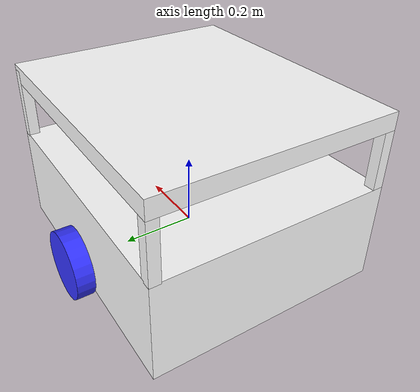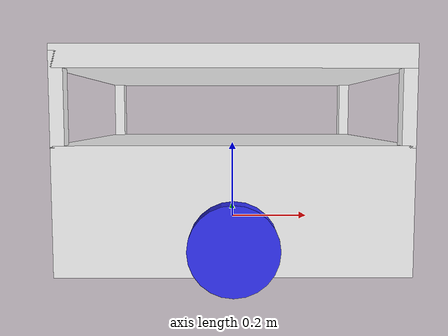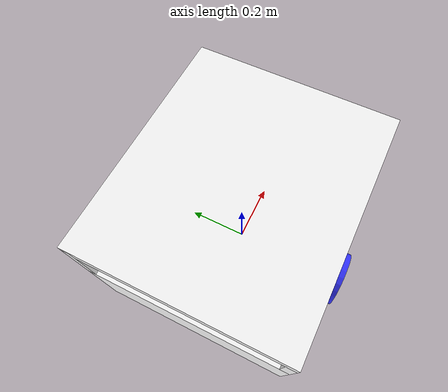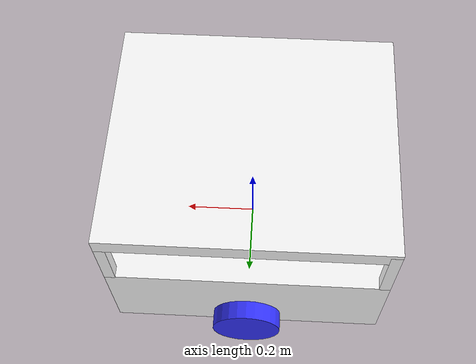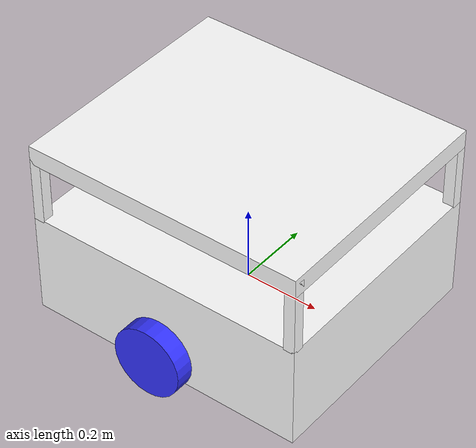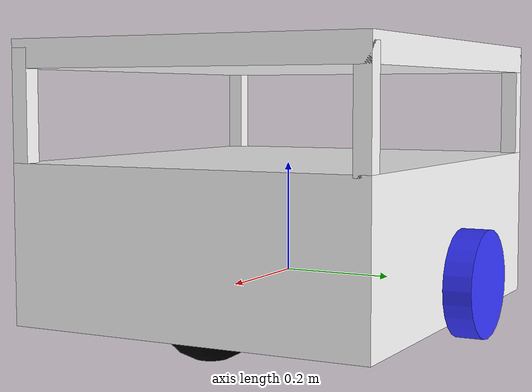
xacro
<?xml version="1.0"?>
<robot xmlns:xacro="http://www.ros.org/wiki/xacro" >

    <xacro:include filename="inertial_macros.xacro"/>

    <xacro:property name="chassis_length" value="0.76"/>
    <xacro:property name="chassis_width" value="0.66"/>
    <xacro:property name="chassis_height" value="0.28"/>
    <xacro:property name="chassis_mass" value="7.2"/>
    <xacro:property name="wheel_radius" value="0.095"/>
    <xacro:property name="wheel_thickness" value="0.05"/>
    <xacro:property name="wheel_mass" value="1.3"/>
    <xacro:property name="wheel_offset_x" value="0.38"/>
    <xacro:property name="wheel_offset_y" value="0.3625"/>
    <xacro:property name="wheel_offset_z" value="0.07"/>
    <xacro:property name="caster_wheel_radius" value="0.095"/>
    <xacro:property name="caster_wheel_mass" value="0.4"/>
    <xacro:property name="caster_wheel_offset_x" value="0.33"/>
    <xacro:property name="caster_wheel_offset_z" value="0.05"/>
    <xacro:property name="column_length" value="0.03"/>
    <xacro:property name="column_width" value="0.03"/>
    <xacro:property name="column_height" value="0.2"/>
    <xacro:property name="column_offset_y" value="0.315"/>
    <xacro:property name="column_offset_z" value="0.375"/>
    <xacro:property name="chassis1_length" value="0.76"/>
    <xacro:property name="chassis1_width" value="0.66"/>
    <xacro:property name="chassis1_height" value="0.05"/>

    <material name="white">
        <color rgba="1 1 1 1" />
    </material>

    <material name="orange">
        <color rgba="1 0.3 0.1 1"/>
    </material>

    <material name="blue">
        <color rgba="0.2 0.2 1 1"/>
    </material>

    <material name="black">
        <color rgba="0 0 0 1"/>
    </material>

    <material name="red">
        <color rgba="1 0 0 1"/>
    </material>

    <!-- BASE LINK -->

    <link name="base_link">

    </link>

    <!-- BASE_FOOTPRINT LINK -->

    <joint name="base_footprint_joint" type="fixed">
        <parent link="base_link"/>
        <child link="base_footprint"/>
        <origin xyz="0 0 0" rpy="0 0 0"/>
    </joint>

    <link name="base_footprint">
    </link>

    <!-- CHASSIS LINK -->

    <joint name="chassis_joint" type="fixed">
        <parent link="base_link"/>
        <child link="chassis"/>
        <origin xyz="${-wheel_offset_x} 0 ${-wheel_offset_z}"/>
    </joint>

    <link name="chassis">
        <visual>
            <origin xyz="${chassis_length/2} 0 ${chassis_height/2}"/>
            <geometry>
                <box size="${chassis_length} ${chassis_width} ${chassis_height}"/>
            </geometry>
            <material name="white"/>
        </visual>
        <collision>
            <origin xyz="${chassis_length/2} 0 ${chassis_height/2}"/>
            <geometry>
                <box size="${chassis_length} ${chassis_width} ${chassis_height}"/>
            </geometry>
        </collision>
        <xacro:inertial_box mass="0.5" x="${chassis_length}" y="${chassis_width}" z="${chassis_height}">
            <origin xyz="${chassis_length/2} 0 ${chassis_height/2}" rpy="0 0 0"/>
        </xacro:inertial_box>
    </link>

    <gazebo reference="chassis">
        <material>Gazebo/White</material>
    </gazebo>

    <joint name="chassis1_joint" type="fixed">
        <parent link="base_link"/>
        <child link="chassis1"/>
        <origin xyz="${-wheel_offset_x} 0 ${wheel_offset_z+0.3}"/>
    </joint>

    <link name="chassis1">
        <visual>
            <origin xyz="${chassis1_length/2} 0 ${chassis1_height/2}"/>
            <geometry>
                <box size="${chassis1_length} ${chassis1_width} ${chassis1_height}"/>
            </geometry>
            <material name="white"/>
        </visual>
        <collision>
            <origin xyz="${chassis1_length/2} 0 ${chassis1_height/2}"/>
            <geometry>
                <box size="${chassis1_length} ${chassis1_width} ${chassis1_height}"/>
            </geometry>
        </collision>
        <xacro:inertial_box mass="0.5" x="${chassis1_length}" y="${chassis1_width}" z="${chassis1_height}">
            <origin xyz="${chassis1_length/2} 0 ${chassis1_height/2}" rpy="0 0 0"/>
        </xacro:inertial_box>
    </link>

    <gazebo reference="chassis1">
        <material>Gazebo/White</material>
    </gazebo>

    <!-- LEFT WHEEL LINK -->

    <joint name="left_wheel_joint" type="continuous">
        <parent link="base_link"/>
        <child link="left_wheel"/>
        <origin xyz="0 ${wheel_offset_y} 0" rpy="-${pi/2} 0 0" />
        <axis xyz="0 0 1"/>
    </joint>

    <link name="left_wheel">
        <visual>
            <geometry>
                <cylinder radius="${wheel_radius}" length="${wheel_thickness}"/>
            </geometry>
            <material name="blue"/>
        </visual>
        <collision>
            <geometry>
                <cylinder radius="${wheel_radius}" length="${wheel_thickness}"/>
            </geometry>
        </collision>
        <xacro:inertial_cylinder mass="${wheel_mass}" length="${wheel_thickness}" radius="${wheel_radius}">
            <origin xyz="0 0 0" rpy="0 0 0"/>
        </xacro:inertial_cylinder>
    </link>

    <gazebo reference="left_wheel">
        <material>Gazebo/Black</material>
    </gazebo>

    <!-- RIGHT WHEEL LINK -->

    <joint name="right_wheel_joint" type="continuous">
        <parent link="base_link"/>
        <child link="right_wheel"/>
        <origin xyz="0 ${-wheel_offset_y} 0" rpy="${pi/2} 0 0" />
        <axis xyz="0 0 -1"/>
    </joint>

    <link name="right_wheel">
        <visual>
            <geometry>
                <cylinder radius="${wheel_radius}" length="${wheel_thickness}"/>
            </geometry>
            <material name="blue"/>
        </visual>
        <collision>
            <geometry>
                <cylinder radius="${wheel_radius}" length="${wheel_thickness}"/>
            </geometry>
        </collision>
        <xacro:inertial_cylinder mass="${wheel_mass}" length="${wheel_thickness}" radius="${wheel_radius}">
            <origin xyz="0 0 0" rpy="0 0 0"/>
        </xacro:inertial_cylinder>
    </link>

    <gazebo reference="right_wheel">
        <material>Gazebo/Black</material>
    </gazebo>

    <!-- CASTER WHEEL LINK -->

    <joint name="caster_wheel_joint" type="fixed">
        <parent link="chassis"/>
        <child link="caster_wheel"/>
        <origin xyz="${caster_wheel_offset_x*2} 0 ${caster_wheel_offset_z}"/>
    </joint>

    <link name="caster_wheel">
        <visual>
            <geometry>
                <sphere radius="${caster_wheel_radius}"/>
            </geometry>
            <material name="black"/>
        </visual>
        <collision>
            <geometry>
                <sphere radius="${caster_wheel_radius}"/>
            </geometry>
        </collision>
        <xacro:inertial_sphere mass="${caster_wheel_mass}" radius="${caster_wheel_radius}">
            <origin xyz="0 0 0" rpy="0 0 0"/>
        </xacro:inertial_sphere>
    </link>

    <gazebo reference="caster_wheel">
        <material>Gazebo/Black</material>
        <mu1 value="0.001"/>
        <mu2 value="0.001"/>
    </gazebo>

    <!-- CASTER WHEEL LINK -->

    <joint name="caster_wheel1_joint" type="fixed">
        <parent link="chassis"/>
        <child link="caster_wheel1"/>
        <origin xyz="0.1 0 ${caster_wheel_offset_z}"/>
    </joint>

    <link name="caster_wheel1">
        <visual>
            <geometry>
                <sphere radius="${caster_wheel_radius}"/>
            </geometry>
            <material name="black"/>
        </visual>
        <collision>
            <geometry>
                <sphere radius="${caster_wheel_radius}"/>
            </geometry>
        </collision>
        <xacro:inertial_sphere mass="${caster_wheel_mass}" radius="${caster_wheel_radius}">
            <origin xyz="0 0 0" rpy="0 0 0"/>
        </xacro:inertial_sphere>
    </link>

    <gazebo reference="caster_wheel1">
        <material>Gazebo/Black</material>
        <mu1 value="0.001"/>
        <mu2 value="0.001"/>
    </gazebo>

    <!--gidung1-->

    <joint name="gidung1_joint" type="fixed">
        <parent link="chassis"/>
        <child link="gidung1"/>
        <origin xyz="${wheel_offset_x+0.365} ${column_offset_y} ${column_offset_z}"/>
    </joint>

    <link name="gidung1">
        <visual>
            <geometry>
                <box size="${column_length} ${column_width} ${column_height}"/>
            </geometry>
            <material name="white"/>
        </visual>
        <collision>
            <geometry>
                <box size="${column_length} ${column_width} ${column_height}"/>
            </geometry>
        </collision>
        <xacro:inertial_box mass="0.8" x="0.03" y="0.03" z="0.2">
            <origin xyz="0 0 0" rpy="0 0 0"/>
        </xacro:inertial_box>
    </link>

    <gazebo reference="gidung1">
        <material>Gazebo/White</material>
    </gazebo>

    <!--gidung2-->

    <joint name="gidung2_joint" type="fixed">
        <parent link="chassis"/>
        <child link="gidung2"/>
        <origin xyz="${wheel_offset_x-0.365} ${column_offset_y} ${column_offset_z}"/>
    </joint>

    <link name="gidung2">
        <visual>
            <geometry>
                <box size="${column_length} ${column_width} ${column_height}"/>
            </geometry>
            <material name="white"/>
        </visual>
        <collision>
            <geometry>
                <box size="${column_length} ${column_width} ${column_height}"/>
            </geometry>
        </collision>
        <xacro:inertial_box mass="0.8" x="0.03" y="0.03" z="0.2">
            <origin xyz="0 0 0" rpy="0 0 0"/>
        </xacro:inertial_box>
    </link>

    <gazebo reference="gidung2">
        <material>Gazebo/White</material>
    </gazebo>

    <!--gidung3-->

    <joint name="gidung3_joint" type="fixed">
        <parent link="chassis"/>
        <child link="gidung3"/>
        <origin xyz="${wheel_offset_x+0.365} ${-column_offset_y} ${column_offset_z}"/>
    </joint>

    <link name="gidung3">
        <visual>
            <geometry>
                <box size="${column_length} ${column_width} ${column_height}"/>
            </geometry>
            <material name="white"/>
        </visual>
        <collision>
            <geometry>
                <box size="${column_length} ${column_width} ${column_height}"/>
            </geometry>
        </collision>
        <xacro:inertial_box mass="0.8" x="0.03" y="0.03" z="0.2">
            <origin xyz="0 0 0" rpy="0 0 0"/>
        </xacro:inertial_box>
    </link>

    <gazebo reference="gidung3">
        <material>Gazebo/White</material>
    </gazebo>

    <!--gidung4-->

    <joint name="gidung4_joint" type="fixed">
        <parent link="chassis"/>
        <child link="gidung4"/>
        <origin xyz="${wheel_offset_x-0.365} ${-column_offset_y} ${column_offset_z}"/>
    </joint>

    <link name="gidung4">
        <visual>
            <geometry>
                <box size="${column_length} ${column_width} ${column_height}"/>
            </geometry>
            <material name="white"/>
        </visual>
        <collision>
            <geometry>
                <box size="${column_length} ${column_width} ${column_height}"/>
            </geometry>
        </collision>
        <xacro:inertial_box mass="0.8" x="0.03" y="0.03" z="0.2">
            <origin xyz="0 0 0" rpy="0 0 0"/>
        </xacro:inertial_box>
    </link>

    <gazebo reference="gidung4">
        <material>Gazebo/White</material>
    </gazebo>

</robot>
